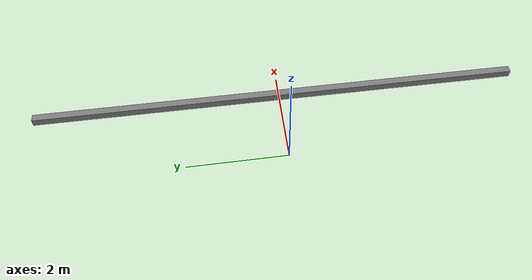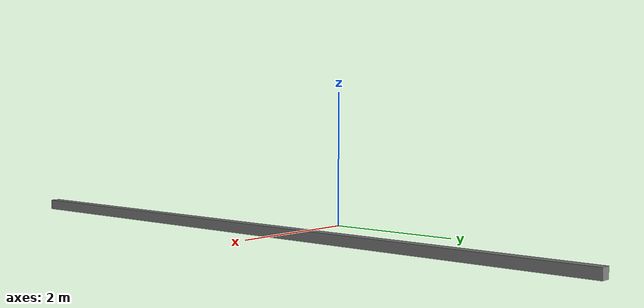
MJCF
<mujoco model="terrain">
    <worldbody>

        <geom pos="1.5 0.0 0.075" type="box" size="0.075 5.0 0.075" quat="1.0 0.0 0.0 0.0" />
    </worldbody>
</mujoco>
